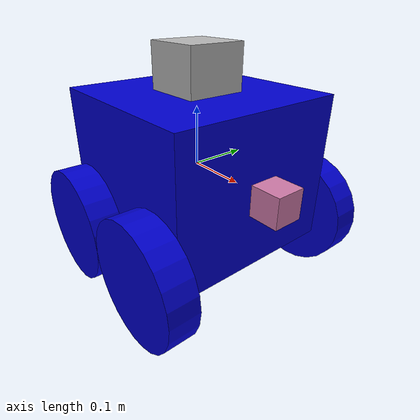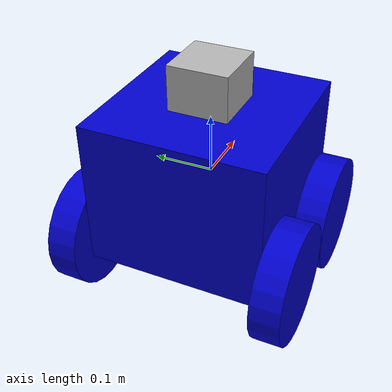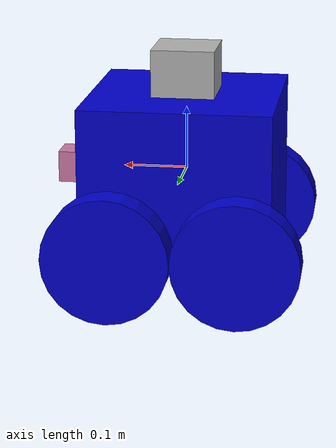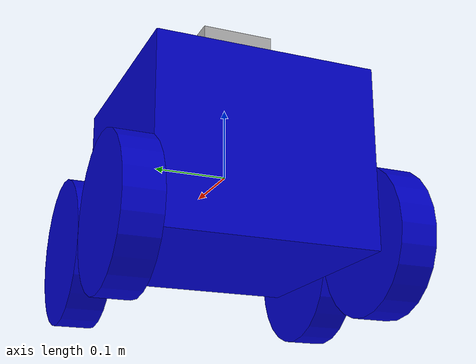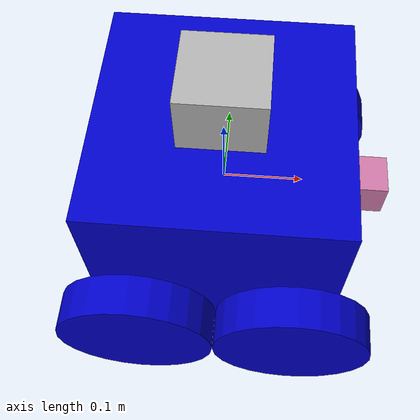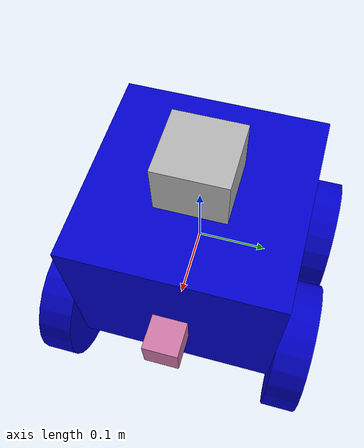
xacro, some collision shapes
<?xml version='1.0'?>

<robot name="drive_robot"
  xmlns:xacro="http://www.ros.org/wiki/xacro">
  <xacro:include filename="$(find drive_robot)/urdf/drive_robot.gazebo" />

  <material name="blue">
    <color rgba="0 0 0.8 1"/>
  </material>

  <link name="robot_footprint"></link>

  <joint name="robot_footprint_joint" type="fixed">
    <origin xyz="0 0 0" rpy="0 0 0" />
    <parent link="robot_footprint"/>
    <child link="chassis" />
  </joint>

  <!-- creating main chassis -->

  <link name='chassis'>
    <pose>0 0 0.1 0 0 0</pose>

    <inertial>
      <mass value="15.0"/>
      <origin xyz="0.0 0 0" rpy=" 0 0 0"/>
      <inertia ixx="0.1" ixy="0" ixz="0" iyy="0.1" iyz="0" izz="0.1" />
    </inertial>

    <collision name='collision'>
      <origin xyz="0 0 0" rpy=" 0 0 0"/>
      <geometry>
        <box size=".3 .3 .25"/>
      </geometry>
    </collision>

    <visual name='chassis_visual'>
      <origin xyz="0 0 0" rpy=" 0 0 0"/>
      <geometry>
        <box size=".3 .3 .25"/>
      </geometry>
      <material name="blue"/>
    </visual>

  </link>

  <!-- creating left wheel -->

  <link name="left_back_wheel">

    <visual name='left_back_wheel_visual'>
      <origin xyz="0 0 0" rpy=" 0 1.5707 1.5707"/>
      <geometry>
        <cylinder radius="0.0999" length="0.05"/>
      </geometry>
      <material name="blue"/>

    </visual>

    <collision name='left_back_wheel_collision'>
      <origin xyz="0 0 0" rpy=" 0 1.5707 1.5707"/>
      <geometry>
        <cylinder radius="0.0999" length="0.05"/>
      </geometry>
    </collision>

    <inertial>
      <mass value="5.0"/>
      <origin xyz="0.0 0 0" rpy=" 0 1.5707 1.5707"/>
      <inertia ixx="0.1" ixy="0" ixz="0" iyy="0.1" iyz="0" izz="0.1" />
    </inertial>

  </link>

  <joint type="continuous" name="left_back_wheel_hinge">
    <origin xyz="-0.1 0.175 -0.10" rpy="0 0 0"/>
    <child link="left_back_wheel"/>
    <parent link="chassis"/>
    <axis xyz="0 1 0" rpy="0 0 0"/>
    <limit effort="10000" velocity="1000"/>
    <joint_properties damping="1.0" friction="1.0"/>
  </joint>

  <!-- creating right wheel -->

  <link name="right_back_wheel">

    <visual name='right_back_wheel_visual'>
      <origin xyz="0 0 0" rpy=" 0 1.5707 1.5707"/>
      <geometry>
        <cylinder radius="0.0999" length="0.05"/>
      </geometry>
      <material name="blue"/>
    </visual>

    <collision name='right_back_wheel_collision'>
      <origin xyz="0 0 0" rpy=" 0 1.5707 1.5707"/>
      <geometry>
        <cylinder radius="0.0999" length="0.05"/>
      </geometry>
    </collision>

    <inertial>
      <mass value="5.0"/>
      <origin xyz="0.0 0 0" rpy=" 0 1.5707 1.5707"/>
      <inertia ixx="0.1" ixy="0" ixz="0" iyy="0.1" iyz="0" izz="0.1" />
    </inertial>

  </link>

  <joint type="continuous" name="right_back_wheel_hinge">
    <origin xyz="-0.1 -0.175 -0.10" rpy="0 0 0"/>
    <child link="right_back_wheel"/>
    <parent link="chassis"/>
    <axis xyz="0 1 0" rpy="0 0 0"/>
    <limit effort="10000" velocity="1000"/>
    <joint_properties damping="1.0" friction="1.0"/>
  </joint>

    <!-- creating left wheel -->

  <link name="left_front_wheel">

    <visual name='left_front_wheel_visual'>
      <origin xyz="0 0 0" rpy=" 0 1.5707 1.5707"/>
      <geometry>
        <cylinder radius="0.0999" length="0.05"/>
      </geometry>
      <material name="blue"/>

    </visual>

    <collision name='left_front_wheel_collision'>
      <origin xyz="0 0 0" rpy=" 0 1.5707 1.5707"/>
      <geometry>
        <cylinder radius="0.0999" length="0.05"/>
      </geometry>
    </collision>

    <inertial>
      <mass value="5.0"/>
      <origin xyz="0.0 0 0" rpy=" 0 1.5707 1.5707"/>
      <inertia ixx="0.1" ixy="0" ixz="0" iyy="0.1" iyz="0" izz="0.1" />
    </inertial>

  </link>

  <joint type="continuous" name="left_front_wheel_hinge">
    <origin xyz="0.1 0.175 -0.10" rpy="0 0 0"/>
    <child link="left_front_wheel"/>
    <parent link="chassis"/>
    <axis xyz="0 1 0" rpy="0 0 0"/>
    <limit effort="10000" velocity="1000"/>
    <joint_properties damping="1.0" friction="1.0"/>
  </joint>

  <!-- creating right wheel -->

  <link name="right_front_wheel">

    <visual name='right_front_wheel_visual'>
      <origin xyz="0 0 0" rpy=" 0 1.5707 1.5707"/>
      <geometry>
        <cylinder radius="0.0999" length="0.05"/>
      </geometry>
      <material name="blue"/>
    </visual>

    <collision name='right_front_wheel_collision'>
      <origin xyz="0 0 0" rpy=" 0 1.5707 1.5707"/>
      <geometry>
        <cylinder radius="0.0999" length="0.05"/>
      </geometry>
    </collision>

    <inertial>
      <mass value="5.0"/>
      <origin xyz="0.0 0 0" rpy=" 0 1.5707 1.5707"/>
      <inertia ixx="0.1" ixy="0" ixz="0" iyy="0.1" iyz="0" izz="0.1" />
    </inertial>

  </link>

  <joint type="continuous" name="right_front_wheel_hinge">
    <origin xyz="0.1 -0.175 -0.10" rpy="0 0 0"/>
    <child link="right_front_wheel"/>
    <parent link="chassis"/>
    <axis xyz="0 1 0" rpy="0 0 0"/>
    <limit effort="10000" velocity="1000"/>
    <joint_properties damping="1.0" friction="1.0"/>
  </joint>

  <!-- creating camera -->

  <link name="camera">

    <collision name='camera_collision'>
      <origin xyz="0 0 0" rpy=" 0 0 0"/>
      <geometry>
        <box size="0.05 0.05 0.05"/>
      </geometry>
    </collision>

    <inertial>
      <mass value="0.1"/>
      <origin xyz="0 0 0" rpy=" 0 0 0"/>
      <inertia ixx="1e-6" ixy="0" ixz="0" iyy="1e-6" iyz="0" izz="1e-6" />
    </inertial>

    <visual name='camera_visual'>
      <origin xyz="0 0 0" rpy=" 0 0 0"/>
      <geometry>
        <box size="0.05 0.05 0.05"/>
      </geometry>
    </visual>

  </link>

  <joint type="fixed" name="camera_joint">
    <origin xyz="0.180 0 0" rpy="0 0 0"/>
    <child link="camera"/>
    <parent link="chassis"/>
    <axis xyz="1 0 0" rpy="0 0 0"/>
  </joint>

  <!-- creating hokuyo -->

  <link name="hokuyo">
    <collision name='hokuyo_collision'>
      <origin xyz="0 0 0" rpy=" 0 0 0"/>
      <geometry>
        <box size="0.1 0.1 0.1"/>
      </geometry>
    </collision>

    <inertial>
      <mass value="0.1"/>
      <origin xyz="0 0 0" rpy=" 0 0 0"/>
      <inertia ixx="1e-6" ixy="0" ixz="0" iyy="1e-6" iyz="0" izz="1e-6" />
    </inertial>

    <visual name='hokuyo_visual'>
      <origin xyz="0 0 0" rpy=" 0 0 0"/>
      <geometry>
        <mesh filename="package://drive_robot/meshes/hokuyo.dae"/>
      </geometry>
    </visual>
  </link>

  <joint type="fixed" name="hokuyo_joint">
    <origin xyz="0 0 0.15" rpy="0 0 0"/>
    <child link="hokuyo"/>
    <parent link="chassis"/>
    <axis xyz="1 0 0" rpy="0 0 0"/>
  </joint>

</robot>
